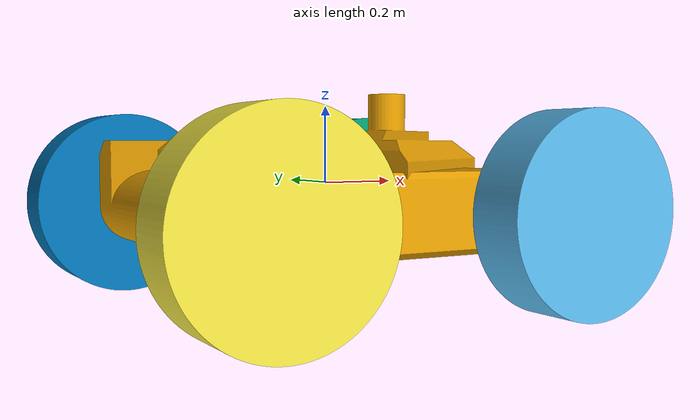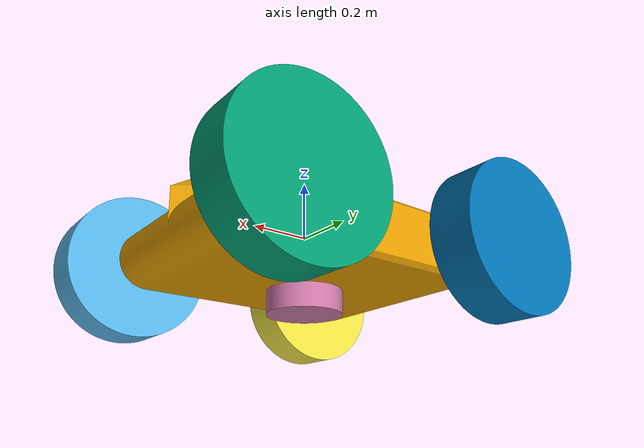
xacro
<?xml version='1.0' encoding='utf-8'?>
<robot name="amr" xmlns:xacro="http://www.ros.org/wiki/xacro">

  <!-- Include materials -->
  <xacro:include filename="$(find amr_description)/urdf/materials.xacro"/>

  <!-- Include gazebo -->
  <xacro:include filename="$(find amr_description)/urdf/gazebo.xacro"/>

<!--Base Link-->
    <link name="base_link">
        <inertial>
            <origin xyz="-0.005375575226534499 -5.49485313734377e-17 -0.04376770691964268" rpy="0.0 0.0 0.0" />
            <mass value="1330.496380521211" />
            <inertia ixx="64.9238607790594" iyy="107.9255209958365" izz="158.45361638099502" ixy="-1.8676558262176537e-13" iyz="-3.189242911227797e-14" ixz="0.5575992010593869" />
        </inertial>
        <visual name="base_link_visual">
            <origin xyz="0.0 0.0 0.0" rpy="0.0 0.0 0.0" />
            <geometry>
                <mesh filename="package://amr_description/meshes/base_link.stl" scale="0.001 0.001 0.001" />
            </geometry>
            <material name="base_link"/>
        </visual>
        <collision name="base_link_collision">
            <origin xyz="0.0 0.0 0.0" rpy="0.0 0.0 0.0" />
            <geometry>
                <mesh filename="package://amr_description/meshes/base_link.stl" scale="0.001 0.001 0.001" />
            </geometry>
        </collision>
    </link>

<!--Wheels-->
    <link name="f_wheel_r">
        <inertial>
            <origin xyz="0.0 3.552713678800501e-17 0.07500000000000007" rpy="0.0 -0.0 0.0" />
            <mass value="27.390760948486008" />
            <inertia ixx="0.47933831659850945" iyy="0.4793383165984846" izz="0.8559612796401739" ixy="3.3306690738754696e-16" iyz="-5.551115123125783e-16" ixz="1.7763568394002505e-15" />
        </inertial>
        <visual name="f_wheel_r_visual">
            <origin xyz="-0.4 0.065 -0.425" rpy="-1.5707963267948966 -0.0 0.0" />
            <geometry>
                <mesh filename="package://amr_description/meshes/f_wheel_r.stl" scale="0.001 0.001 0.001" />
            </geometry>
            <material name="Wheels"/>
        </visual>
        <collision name="f_wheel_r_collision">
            <origin xyz="-0.4 0.065 -0.425" rpy="-1.5707963267948966 -0.0 0.0" />
            <geometry>
                <mesh filename="package://amr_description/meshes/f_wheel_r.stl" scale="0.001 0.001 0.001" />
            </geometry>
        </collision>
    </link>
    <link name="f_wheel_l">
        <inertial>
            <origin xyz="0.0 -3.552713678800501e-17 0.075" rpy="0.0 -0.0 0.0" />
            <mass value="27.390760948486008" />
            <inertia ixx="0.4793383165985121" iyy="0.47933831659848636" izz="0.8559612796401739" ixy="-3.3306690738754696e-16" iyz="3.3306690738754696e-16" ixz="0.0" />
        </inertial>
        <visual name="f_wheel_l_visual">
            <origin xyz="-0.4 -0.065 -0.425" rpy="1.5707963267948966 -0.0 0.0" />
            <geometry>
                <mesh filename="package://amr_description/meshes/f_wheel_l.stl" scale="0.001 0.001 0.001" />
            </geometry>
            <material name="Wheels"/>
        </visual>
        <collision name="f_wheel_l_collision">
            <origin xyz="-0.4 -0.065 -0.425" rpy="1.5707963267948966 -0.0 0.0" />
            <geometry>
                <mesh filename="package://amr_description/meshes/f_wheel_l.stl" scale="0.001 0.001 0.001" />
            </geometry>
        </collision>
    </link>
    <link name="b_wheel_r">
        <inertial>
            <origin xyz="0.0 3.552713678800501e-17 0.07500000000000007" rpy="0.0 -0.0 0.0" />
            <mass value="27.390760948486008" />
            <inertia ixx="0.47933831659850945" iyy="0.4793383165984846" izz="0.8559612796401739" ixy="3.3306690738754696e-16" iyz="-5.551115123125783e-16" ixz="-2.6645352591003757e-15" />
        </inertial>
        <visual name="b_wheel_r_visual">
            <origin xyz="0.4 0.065 -0.425" rpy="-1.5707963267948966 -0.0 0.0" />
            <geometry>
                <mesh filename="package://amr_description/meshes/b_wheel_r.stl" scale="0.001 0.001 0.001" />
            </geometry>
            <material name="Wheels"/>
        </visual>
        <collision name="b_wheel_r_collision">
            <origin xyz="0.4 0.065 -0.425" rpy="-1.5707963267948966 -0.0 0.0" />
            <geometry>
                <mesh filename="package://amr_description/meshes/b_wheel_r.stl" scale="0.001 0.001 0.001" />
            </geometry>
        </collision>
    </link>
    <link name="b_wheel_l">
        <inertial>
            <origin xyz="0.0 -3.552713678800501e-17 0.075" rpy="0.0 -0.0 0.0" />
            <mass value="27.390760948486008" />
            <inertia ixx="0.4793383165985121" iyy="0.47933831659848636" izz="0.8559612796401739" ixy="-3.3306690738754696e-16" iyz="3.3306690738754696e-16" ixz="0.0" />
        </inertial>
        <visual name="b_wheel_l_visual">
            <origin xyz="0.4 -0.065 -0.425" rpy="1.5707963267948966 -0.0 0.0" />
            <geometry>
                <mesh filename="package://amr_description/meshes/b_wheel_l.stl" scale="0.001 0.001 0.001" />
            </geometry>
            <material name="Wheels"/>
        </visual>
        <collision name="b_wheel_l_collision">
            <origin xyz="0.4 -0.065 -0.425" rpy="1.5707963267948966 -0.0 0.0" />
            <geometry>
                <mesh filename="package://amr_description/meshes/b_wheel_l.stl" scale="0.001 0.001 0.001" />
            </geometry>
        </collision>
    </link>

<!--Camera link-->
    <link name="camera_link">
        <inertial>
            <origin xyz="0.00021147401675925437 1.1102230246251566e-18 0.05000000000000004" rpy="0.0 -0.0 0.0" />
            <mass value="21.86537558266994" />
            <inertia ixx="0.16402649642970402" iyy="0.03558843780421217" izz="0.16574154808891284" ixy="2.4125911295413974e-14" iyz="4.5693013817071915e-17" ixz="2.220446049250313e-16" />
        </inertial>
        <visual name="camera_link_visual">
            <origin xyz="-0.19166700333333336 1.1102230246251566e-18 -0.23500000000000001" rpy="0.0 -0.0 0.0" />
            <geometry>
                <mesh filename="package://amr_description/meshes/camera_link.stl" scale="0.001 0.001 0.001" />
            </geometry>
            <material name="camera_link"/>
        </visual>
        <collision name="camera_link_collision">
            <origin xyz="-0.19166700333333336 1.1102230246251566e-18 -0.23500000000000001" rpy="0.0 -0.0 0.0" />
            <geometry>
                <mesh filename="package://amr_description/meshes/camera_link.stl" scale="0.001 0.001 0.001" />
            </geometry>
        </collision>
    </link>

<!--Lidar link-->
    <link name="lidar_link">
        <inertial>
            <origin xyz="0.0 -1.8528073920390496e-17 0.04" rpy="0.0 -0.0 0.0" />
            <mass value="30.826877913349836" />
            <inertia ixx="0.13685849340280387" iyy="0.1368584934028112" izz="0.24083498369804202" ixy="1.8277205526828766e-16" iyz="3.1413946999236946e-17" ixz="0.0" />
        </inertial>
        <visual name="lidar_link_visual">
            <origin xyz="0.0 0.0 -0.185" rpy="3.141592653589793 -0.0 0.0" />
            <geometry>
                <mesh filename="package://amr_description/meshes/lidar_link.stl" scale="0.001 0.001 0.001" />
            </geometry>
            <material name="lidar_link"/>
        </visual>
        <collision name="lidar_link_collision">
            <origin xyz="0.0 0.0 -0.185" rpy="3.141592653589793 -0.0 0.0" />
            <geometry>
                <mesh filename="package://amr_description/meshes/lidar_link.stl" scale="0.001 0.001 0.001" />
            </geometry>
        </collision>
    </link>

<!--Joints-->
    <joint name="base_link_f_wheel_r_revolute" type="continuous">
        <origin xyz="0.4 -0.425 -0.065" rpy="1.5707963267948966 -0.0 0.0" />
        <parent link="base_link" />
        <child link="f_wheel_r" />
        <axis xyz="0.0 0.0 1.0" />
    </joint>
    <joint name="base_link_f_wheel_l_revolute" type="continuous">
        <origin xyz="0.4 0.425 -0.065" rpy="-1.5707963267948966 -0.0 0.0" />
        <parent link="base_link" />
        <child link="f_wheel_l" />
        <axis xyz="0.0 0.0 1.0" />
    </joint>
    <joint name="base_link_b_wheel_l_revolute" type="continuous">
        <origin xyz="-0.4 0.425 -0.065" rpy="-1.5707963267948966 -0.0 0.0" />
        <parent link="base_link" />
        <child link="b_wheel_l" />
        <axis xyz="0.0 0.0 1.0" />
    </joint>
    <joint name="base_link_b_wheel_r_revolute" type="continuous">
        <origin xyz="-0.4 -0.425 -0.065" rpy="1.5707963267948966 -0.0 0.0" />
        <parent link="base_link" />
        <child link="b_wheel_r" />
        <axis xyz="0.0 0.0 1.0" />
    </joint>
    <joint name="base_link_camera_rotation" type="continuous">
        <origin xyz="0.19166667 0.0 0.23500000000000001" rpy="0.0 -0.0 0.0" />
        <parent link="base_link" />
        <child link="camera_link" />
        <axis xyz="0.0 0.0 1.0" />
    </joint>
    <joint name="base_link_lidar_rotation" type="continuous">
        <origin xyz="0.0 0.0 -0.185" rpy="3.141592653589793 -0.0 0.0" />
        <parent link="base_link" />
        <child link="lidar_link" />
        <axis xyz="0.0 0.0 1.0" />
    </joint>

    <!-- Camera Sensor Plugin -->
        <gazebo reference="camera_link">

            <sensor name="camera_sensor" type="camera">

                <update_rate>30.0</update_rate>

                <camera>
                    <horizontal_fov>1.047</horizontal_fov>

                    <image>
                        <width>640</width>
                        <height>480</height>
                        <format>R8G8B8</format>
                    </image>

                    <clip>
                        <near>0.1</near>
                        <far>100.0</far>
                    </clip>
                </camera>

                <plugin name="camera_controller" filename="libgazebo_ros_camera.so">

                    <ros>
                        <namespace>/camera</namespace>
                    </ros>

                    <frame_name>camera_link</frame_name>

                </plugin>

            </sensor>

        </gazebo>

    <!-- LiDAR Sensor Plugin -->
        <gazebo reference="lidar_link">

            <sensor name="lidar_sensor" type="ray">

                <update_rate>10.0</update_rate>

                <ray>

                    <scan>

                        <horizontal>

                            <samples>720</samples>
                            <resolution>1</resolution>

                            <min_angle>-3.14159</min_angle>
                            <max_angle>3.14159</max_angle>

                        </horizontal>

                    </scan>

                    <range>

                        <min>0.12</min>
                        <max>12.0</max>

                        <resolution>0.01</resolution>

                    </range>

                </ray>

                <plugin name="laser_controller" filename="libgazebo_ros_ray_sensor.so">

                    <ros>
                        <remapping>~/out:=scan</remapping>
                    </ros>

                    <output_type>sensor_msgs/LaserScan</output_type>

                    <frame_name>lidar_link</frame_name>

                </plugin>

            </sensor>

        </gazebo>

</robot>

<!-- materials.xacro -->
<robot xmlns:xacro="http://www.ros.org/wiki/xacro">

    <!-- ================= COLORS ================= -->

    <material name="black">
        <color rgba="0.05 0.05 0.05 1"/>
    </material>

    <material name="dark_grey">
        <color rgba="0.2 0.2 0.2 1"/>
    </material>

    <material name="grey">
        <color rgba="0.5 0.5 0.5 1"/>
    </material>

    <material name="orange">
        <color rgba="0.85 0.55 0.1 1"/>
    </material>

    <material name="blue">
        <color rgba="0.1 0.3 0.8 1"/>
    </material>

    <material name="white">
        <color rgba="1 1 1 1"/>
    </material>

</robot>
